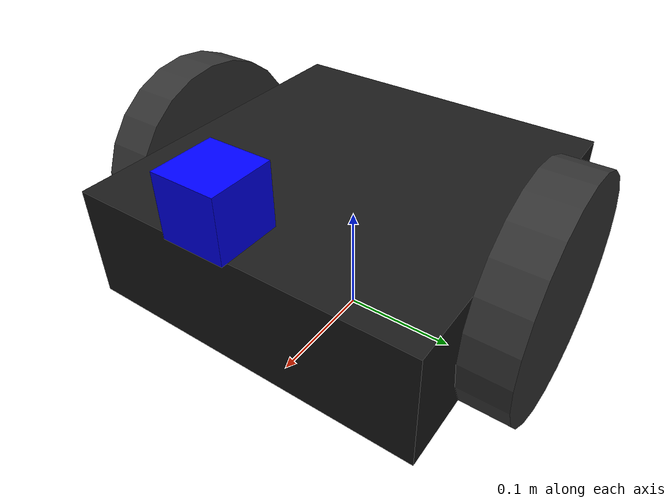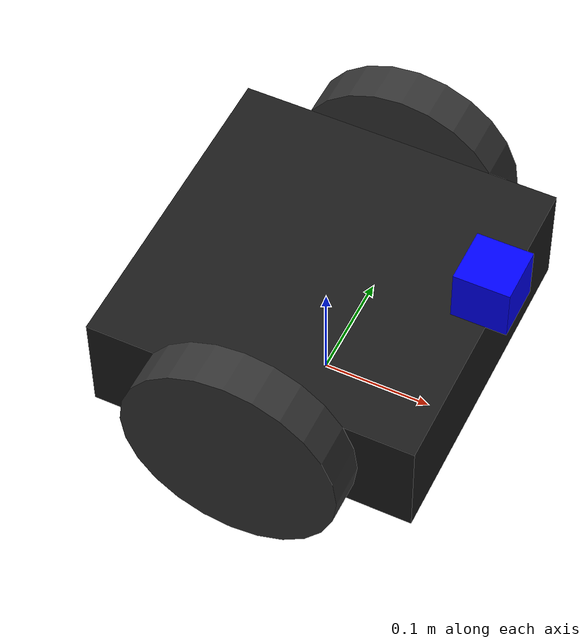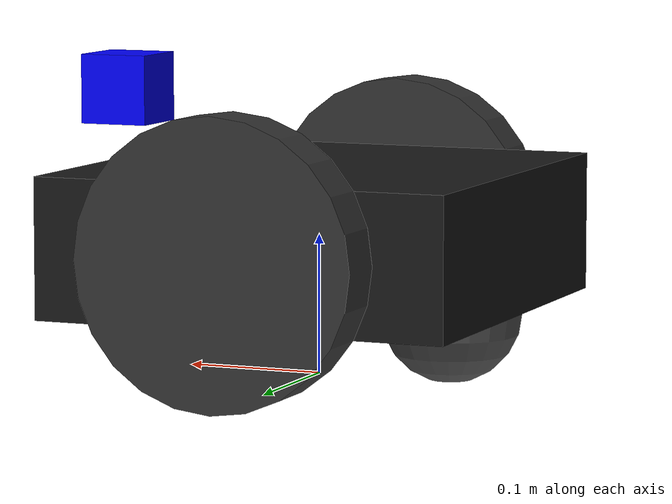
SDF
<?xml version="1.0" ?>
<sdf version="1.8">
  <model name="vio_robot">
    <pose>0 0 0.1 0 0 0</pose>

    <link name="base_link">
      <inertial>
        <mass>1.0</mass>
        <inertia>
          <ixx>0.01</ixx><ixy>0</ixy><ixz>0</ixz>
          <iyy>0.01</iyy><iyz>0</iyz>
          <izz>0.01</izz>
        </inertia>
      </inertial>
      <visual name="visual">
        <geometry><box><size>0.3 0.3 0.1</size></box></geometry>
        <material><ambient>0.1 0.1 0.1 1</ambient></material>
      </visual>
      <collision name="collision">
        <geometry><box><size>0.3 0.3 0.1</size></box></geometry>
      </collision>
    </link>

    <!-- Left Wheel -->
    <link name="left_wheel">
      <pose>0 0.17 0 -1.5707 0 0</pose>
      <inertial>
        <mass>0.1</mass>
        <inertia>
          <ixx>0.001</ixx><iyy>0.001</iyy><izz>0.001</izz>
        </inertia>
      </inertial>
      <visual name="visual">
        <geometry><cylinder><radius>0.1</radius><length>0.04</length></cylinder></geometry>
        <material><ambient>0.2 0.2 0.2 1</ambient></material>
      </visual>
      <collision name="collision">
        <geometry><cylinder><radius>0.1</radius><length>0.04</length></cylinder></geometry>
        <surface>
          <friction>
            <ode><mu>1.0</mu><mu2>1.0</mu2></ode>
          </friction>
        </surface>
      </collision>
    </link>

    <joint name="left_wheel_joint" type="revolute">
      <parent>base_link</parent>
      <child>left_wheel</child>
      <axis>
        <xyz>0 0 1</xyz>
        <limit><lower>-1.79769e+308</lower><upper>1.79769e+308</upper></limit>
      </axis>
    </joint>

    <!-- Right Wheel -->
    <link name="right_wheel">
      <pose>0 -0.17 0 -1.5707 0 0</pose>
      <inertial>
        <mass>0.1</mass>
        <inertia>
          <ixx>0.001</ixx><iyy>0.001</iyy><izz>0.001</izz>
        </inertia>
      </inertial>
      <visual name="visual">
        <geometry><cylinder><radius>0.1</radius><length>0.04</length></cylinder></geometry>
        <material><ambient>0.2 0.2 0.2 1</ambient></material>
      </visual>
      <collision name="collision">
        <geometry><cylinder><radius>0.1</radius><length>0.04</length></cylinder></geometry>
        <surface>
          <friction>
            <ode><mu>1.0</mu><mu2>1.0</mu2></ode>
          </friction>
        </surface>
      </collision>
    </link>

    <joint name="right_wheel_joint" type="revolute">
      <parent>base_link</parent>
      <child>right_wheel</child>
      <axis>
        <xyz>0 0 1</xyz>
        <limit><lower>-1.79769e+308</lower><upper>1.79769e+308</upper></limit>
      </axis>
    </joint>

    <!-- Caster Wheel (for stability) -->
    <link name="caster">
      <pose>-0.1 0 -0.05 0 0 0</pose>
      <inertial>
        <mass>0.05</mass>
        <inertia>
          <ixx>0.0001</ixx><iyy>0.0001</iyy><izz>0.0001</izz>
        </inertia>
      </inertial>
      <visual name="visual">
        <geometry><sphere><radius>0.05</radius></sphere></geometry>
        <material><ambient>0.3 0.3 0.3 1</ambient></material>
      </visual>
      <collision name="collision">
        <geometry><sphere><radius>0.05</radius></sphere></geometry>
        <surface>
          <friction><ode><mu>0.0</mu><mu2>0.0</mu2></ode></friction>
        </surface>
      </collision>
    </link>

    <joint name="caster_joint" type="fixed">
      <parent>base_link</parent>
      <child>caster</child>
    </joint>

    <!-- IMU Link & Sensor -->
    <link name="imu_link">
      <pose>0 0 0.05 0 0 0</pose>
      <inertial>
        <mass>0.01</mass>
        <inertia>
          <ixx>0.0001</ixx><iyy>0.0001</iyy><izz>0.0001</izz>
        </inertia>
      </inertial>
      <sensor name="imu_sensor" type="imu">
        <always_on>true</always_on>
        <update_rate>200</update_rate>
        <visualize>true</visualize>
        <topic>/imu</topic>
      </sensor>
    </link>

    <joint name="imu_joint" type="fixed">
      <parent>base_link</parent>
      <child>imu_link</child>
    </joint>

    <!-- Camera Link & Sensor -->
    <link name="camera_link">
      <pose>0.15 0 0.1 0 0 0</pose>
      <inertial>
        <mass>0.1</mass>
        <inertia><ixx>0.001</ixx><iyy>0.001</iyy><izz>0.001</izz></inertia>
      </inertial>
      <visual name="camera_visual">
        <geometry><box><size>0.05 0.05 0.05</size></box></geometry>
        <material><ambient>0 0 1 1</ambient></material>
      </visual>
      <sensor name="camera" type="camera">
        <pose>0 0 0 0 0 0</pose>
        <always_on>true</always_on>
        <update_rate>10</update_rate>
        <visualize>false</visualize>
        <topic>/camera</topic>
        <camera>
          <horizontal_fov>1.047</horizontal_fov>
          <image>
            <width>640</width>
            <height>480</height>
            <format>R8G8B8</format>
          </image>
          <clip>
            <near>0.1</near>
            <far>100</far>
          </clip>
        </camera>
      </sensor>
    </link>

    <joint name="camera_joint" type="fixed">
      <parent>base_link</parent>
      <child>camera_link</child>
    </joint>

    <!-- Diff Drive Plugin -->
    <plugin
      filename="ignition-gazebo-diff-drive-system"
      name="ignition::gazebo::systems::DiffDrive">
      <left_joint>left_wheel_joint</left_joint>
      <right_joint>right_wheel_joint</right_joint>
      <wheel_separation>0.34</wheel_separation>
      <wheel_radius>0.1</wheel_radius>
      <odom_publish_frequency>50</odom_publish_frequency>
      <topic>cmd_vel</topic>
    </plugin>

    <plugin filename="libignition-gazebo-pose-publisher-system.so"
            name="ignition::gazebo::systems::PosePublisher">
      <publish_link_pose>true</publish_link_pose>
      <publish_sensor_pose>true</publish_sensor_pose>
      <publish_collision_pose>false</publish_collision_pose>
      <publish_visual_pose>false</publish_visual_pose>
      <publish_nested_model_pose>false</publish_nested_model_pose>
      <use_pose_vector_msg>true</use_pose_vector_msg>
      <static_publisher>true</static_publisher>
      <static_update_frequency>1</static_update_frequency>
      <update_frequency>50</update_frequency>
    </plugin>
  </model>
</sdf>
